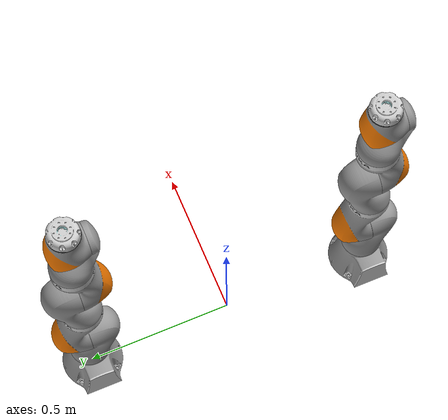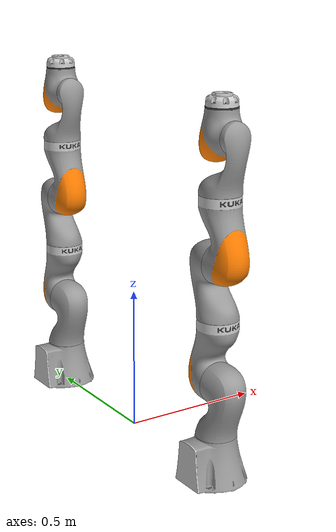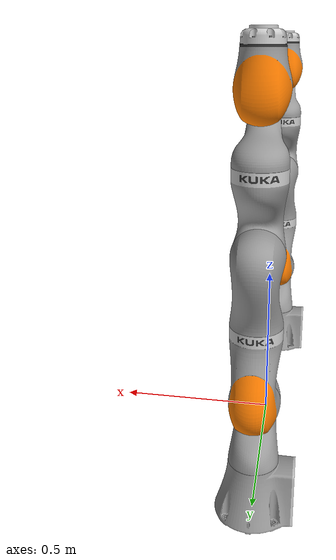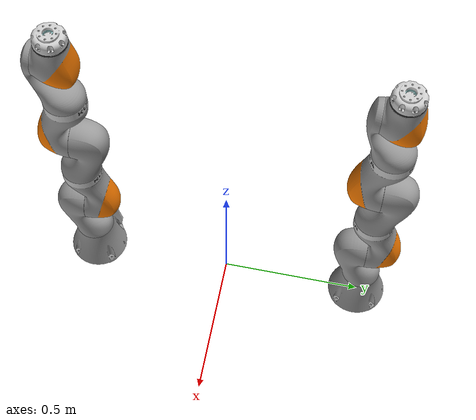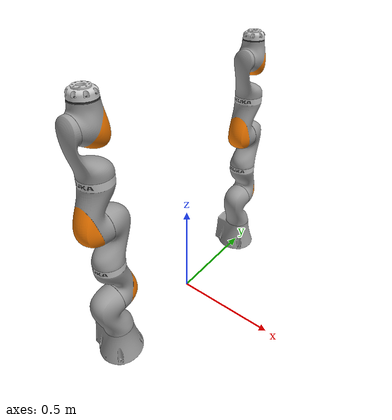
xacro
<?xml version="1.0"?>

<robot name="lbr_dual_arm" xmlns:xacro="http://www.ros.org/wiki/xacro">
    <!-- include the lbr iiwa macro -->
    <xacro:include filename="$(find lbr_description)/urdf/iiwa7/iiwa7_description.xacro" />

    <!-- add an arguent to allow for mock / hardware / gazebo -->
    <xacro:arg name="mode" default="mock" />

    <!-- add a base / floating link -->
    <link name="base_link" />

    <!-- add joints that connect the robots -->
    <joint name="lbr_one_base_joint" type="fixed">
        <origin xyz="0 0.5 0" rpy="0 0 0" />
        <parent link="base_link" />
        <child link="lbr_one_link_0" />
    </joint>

    <joint name="lbr_two_base_joint" type="fixed">
        <origin xyz="0 -0.5 0" rpy="0 0 0" />
        <parent link="base_link" />
        <child link="lbr_two_link_0" />
    </joint>

    <!-- add robot 1 via macro, note that different lbr_one_system_config.yaml are used (to
    configure port id) -->
    <xacro:iiwa7
        robot_name="lbr_one"
        mode="$(arg mode)"
        system_config_path="$(find lbr_dual_arm_description)/ros2_control/lbr_one_system_config.yaml" />

    <!-- add robot 2 via macro -->
    <xacro:iiwa7
        robot_name="lbr_two"
        mode="$(arg mode)"
        system_config_path="$(find lbr_dual_arm_description)/ros2_control/lbr_two_system_config.yaml" />
</robot>

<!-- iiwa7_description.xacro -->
<robot xmlns:xacro="http://www.ros.org/wiki/xacro">
    <!-- robot as extracted via https://github.com/syuntoku14/fusion2urdf -->
    <xacro:macro name="iiwa7"
        params="robot_name:=^|lbr mode:=^|mock system_config_path:=^|'$(find lbr_description)/ros2_control/lbr_system_config.yaml' joint_limits_path:=^|'$(find lbr_description)/urdf/iiwa7/joint_limits.yaml' initial_joint_positions_path:=^|'$(find lbr_description)/ros2_control/initial_joint_positions.yaml'">

        <!-- includes -->
        <xacro:include filename="$(find lbr_description)/gazebo/lbr_gazebo.xacro" />
        <xacro:include filename="$(find lbr_description)/ros2_control/lbr_system_interface.xacro" />

        <!-- joint limits via yaml -->
        <xacro:property name="joint_limits" value="${xacro.load_yaml(joint_limits_path)}" />

        <!-- constants -->
        <xacro:property name="PI" value="3.1415926535897931" />
        <xacro:property name="joint_damping" value="10.0" />
        <xacro:property name="joint_friction" value="0.1" />

        <!-- macros for gazebo / mock / hardware -->
        <xacro:lbr_gazebo robot_name="${robot_name}" />
        <xacro:lbr_system_interface
            robot_name="${robot_name}"
            mode="${mode}"
            joint_limits="${joint_limits}"
            system_config_path="${system_config_path}"
            initial_joint_positions_path="${initial_joint_positions_path}" />

        <link name="${robot_name}_link_0">
            <inertial>
                <origin rpy="0 0 0" xyz="-0.012857 0.0 0.069964" />
                <mass value="4.855658" />
                <inertia ixx="0.017839" ixy="0.0" ixz="0.000781" iyy="0.022294" iyz="0.0"
                    izz="0.021334" />
            </inertial>
            <visual>
                <origin rpy="0 0 0" xyz="0 0 0" />
                <geometry>
                    <mesh filename="package://lbr_description/meshes/iiwa7/visual/link_0.dae" />
                </geometry>
            </visual>
            <collision>
                <origin rpy="0 0 0" xyz="0 0 0" />
                <geometry>
                    <mesh filename="package://lbr_description/meshes/iiwa7/collision/link_0.stl" />
                </geometry>
            </collision>
        </link>

        <joint name="${robot_name}_A1" type="revolute">
            <origin rpy="0 0 0" xyz="0.0 0.0 0.1475" />
            <parent link="${robot_name}_link_0" />
            <child link="${robot_name}_link_1" />
            <axis xyz="0.0 0.0 1.0" />
            <limit
                effort="${joint_limits['A1']['effort']}"
                lower="${joint_limits['A1']['lower'] * PI / 180}"
                upper="${joint_limits['A1']['upper'] * PI / 180}"
                velocity="${joint_limits['A1']['velocity'] * PI / 180}" />
            <safety_controller
                soft_lower_limit="${joint_limits['A1']['lower'] * PI / 180}"
                soft_upper_limit="${joint_limits['A1']['upper'] * PI / 180}"
                k_position="${joint_limits['A1']['velocity'] / joint_limits['A1']['safety_position_margin']}"
                k_velocity="${joint_limits['A1']['k_velocity']}" />
            <dynamics damping="${joint_damping}" friction="${joint_friction}" />
        </joint>

        <link name="${robot_name}_link_1">
            <inertial>
                <origin rpy="0 0 0" xyz="0.0 -0.034819 0.123299" />
                <mass value="3.394011" />
                <inertia ixx="0.021383" ixy="0.0" ixz="0.0" iyy="0.020403" iyz="0.003797"
                    izz="0.007563" />
            </inertial>
            <visual>
                <origin rpy="0 0 0" xyz="0.0 0.0 -0.1475" />
                <geometry>
                    <mesh filename="package://lbr_description/meshes/iiwa7/visual/link_1.dae" />
                </geometry>
            </visual>
            <collision>
                <origin rpy="0 0 0" xyz="0.0 0.0 -0.1475" />
                <geometry>
                    <mesh filename="package://lbr_description/meshes/iiwa7/collision/link_1.stl" />
                </geometry>
            </collision>
        </link>

        <joint name="${robot_name}_A2" type="revolute">
            <origin rpy="0 0 0" xyz="0.0 -0.0105 0.1925" />
            <parent link="${robot_name}_link_1" />
            <child link="${robot_name}_link_2" />
            <axis xyz="0.0 1.0 0.0" />
            <limit
                effort="${joint_limits['A2']['effort']}"
                lower="${joint_limits['A2']['lower'] * PI / 180}"
                upper="${joint_limits['A2']['upper'] * PI / 180}"
                velocity="${joint_limits['A2']['velocity'] * PI / 180}" />
            <safety_controller
                soft_lower_limit="${joint_limits['A2']['lower'] * PI / 180}"
                soft_upper_limit="${joint_limits['A2']['upper'] * PI / 180}"
                k_position="${joint_limits['A2']['velocity'] / joint_limits['A2']['safety_position_margin']}"
                k_velocity="${joint_limits['A2']['k_velocity']}" />
            <dynamics damping="${joint_damping}" friction="${joint_friction}" />
        </joint>

        <link name="${robot_name}_link_2">
            <inertial>
                <origin rpy="0 0 0" xyz="0.0 0.039793 0.086944" />
                <mass value="4.031991" />
                <inertia ixx="0.031697" ixy="0.0" ixz="0.0" iyy="0.03008" iyz="0.005889"
                    izz="0.009666" />
            </inertial>
            <visual>
                <origin rpy="0 0 0" xyz="0.0 0.0105 -0.34" />
                <geometry>
                    <mesh filename="package://lbr_description/meshes/iiwa7/visual/link_2.dae" />
                </geometry>
            </visual>
            <collision>
                <origin rpy="0 0 0" xyz="0.0 0.0105 -0.34" />
                <geometry>
                    <mesh filename="package://lbr_description/meshes/iiwa7/collision/link_2.stl" />
                </geometry>
            </collision>
        </link>

        <joint name="${robot_name}_A3" type="revolute">
            <origin rpy="0 0 0" xyz="0.0 0.0105 0.2075" />
            <parent link="${robot_name}_link_2" />
            <child link="${robot_name}_link_3" />
            <axis xyz="0.0 0.0 1.0" />
            <limit
                effort="${joint_limits['A3']['effort']}"
                lower="${joint_limits['A3']['lower'] * PI / 180}"
                upper="${joint_limits['A3']['upper'] * PI / 180}"
                velocity="${joint_limits['A3']['velocity'] * PI / 180}" />
            <safety_controller
                soft_lower_limit="${joint_limits['A3']['lower'] * PI / 180}"
                soft_upper_limit="${joint_limits['A3']['upper'] * PI / 180}"
                k_position="${joint_limits['A3']['velocity'] / joint_limits['A3']['safety_position_margin']}"
                k_velocity="${joint_limits['A3']['k_velocity']}" />
            <dynamics damping="${joint_damping}" friction="${joint_friction}" />
        </joint>

        <link name="${robot_name}_link_3">
            <inertial>
                <origin rpy="0 0 0" xyz="0.0 0.034819 0.123299" />
                <mass value="3.394011" />
                <inertia ixx="0.021383" ixy="0.0" ixz="0.0" iyy="0.020403" iyz="-0.003797"
                    izz="0.007563" />
            </inertial>
            <visual>
                <origin rpy="0 0 0" xyz="0.0 0.0 -0.5475" />
                <geometry>
                    <mesh filename="package://lbr_description/meshes/iiwa7/visual/link_3.dae" />
                </geometry>
            </visual>
            <collision>
                <origin rpy="0 0 0" xyz="0.0 0.0 -0.5475" />
                <geometry>
                    <mesh filename="package://lbr_description/meshes/iiwa7/collision/link_3.stl" />
                </geometry>
            </collision>
        </link>

        <joint name="${robot_name}_A4" type="revolute">
            <origin rpy="0 0 0" xyz="0.0 0.0105 0.1925" />
            <parent link="${robot_name}_link_3" />
            <child link="${robot_name}_link_4" />
            <axis xyz="0.0 -1.0 0.0" />
            <limit
                effort="${joint_limits['A4']['effort']}"
                lower="${joint_limits['A4']['lower'] * PI / 180}"
                upper="${joint_limits['A4']['upper'] * PI / 180}"
                velocity="${joint_limits['A4']['velocity'] * PI / 180}" />
            <safety_controller
                soft_lower_limit="${joint_limits['A4']['lower'] * PI / 180}"
                soft_upper_limit="${joint_limits['A4']['upper'] * PI / 180}"
                k_position="${joint_limits['A4']['velocity'] / joint_limits['A4']['safety_position_margin']}"
                k_velocity="${joint_limits['A4']['k_velocity']}" />
            <dynamics damping="${joint_damping}" friction="${joint_friction}" />
        </joint>

        <link name="${robot_name}_link_4">
            <inertial>
                <origin rpy="0 0 0" xyz="0.0 -0.039793 0.086944" />
                <mass value="4.031989" />
                <inertia ixx="0.031695" ixy="0.0" ixz="0.0" iyy="0.030079" iyz="-0.005889"
                    izz="0.009665" />
            </inertial>
            <visual>
                <origin rpy="0 0 0" xyz="0.0 -0.0105 -0.74" />
                <geometry>
                    <mesh filename="package://lbr_description/meshes/iiwa7/visual/link_4.dae" />
                </geometry>
            </visual>
            <collision>
                <origin rpy="0 0 0" xyz="0.0 -0.0105 -0.74" />
                <geometry>
                    <mesh filename="package://lbr_description/meshes/iiwa7/collision/link_4.stl" />
                </geometry>
            </collision>
        </link>

        <joint name="${robot_name}_A5" type="revolute">
            <origin rpy="0 0 0" xyz="0.0 -0.0105 0.2075" />
            <parent link="${robot_name}_link_4" />
            <child link="${robot_name}_link_5" />
            <axis xyz="0.0 0.0 1.0" />
            <limit
                effort="${joint_limits['A5']['effort']}"
                lower="${joint_limits['A5']['lower'] * PI / 180}"
                upper="${joint_limits['A5']['upper'] * PI / 180}"
                velocity="${joint_limits['A5']['velocity'] * PI / 180}" />
            <safety_controller
                soft_lower_limit="${joint_limits['A5']['lower'] * PI / 180}"
                soft_upper_limit="${joint_limits['A5']['upper'] * PI / 180}"
                k_position="${joint_limits['A5']['velocity'] / joint_limits['A5']['safety_position_margin']}"
                k_velocity="${joint_limits['A5']['k_velocity']}" />
            <dynamics damping="${joint_damping}" friction="${joint_friction}" />
        </joint>

        <link name="${robot_name}_link_5">
            <inertial>
                <origin rpy="0 0 0" xyz="0.0 -0.029824 0.076267" />
                <mass value="1.529239" />
                <inertia ixx="0.008485" ixy="0.0" ixz="0.0" iyy="0.007136" iyz="0.002806"
                    izz="0.003848" />
            </inertial>
            <visual>
                <origin rpy="0 0 0" xyz="0.0 0.0 -0.9475" />
                <geometry>
                    <mesh filename="package://lbr_description/meshes/iiwa7/visual/link_5.dae" />
                </geometry>
            </visual>
            <collision>
                <origin rpy="0 0 0" xyz="0.0 0.0 -0.9475" />
                <geometry>
                    <mesh filename="package://lbr_description/meshes/iiwa7/collision/link_5.stl" />
                </geometry>
            </collision>
        </link>

        <joint name="${robot_name}_A6" type="revolute">
            <origin rpy="0 0 0" xyz="0.0 -0.0707 0.1925" />
            <parent link="${robot_name}_link_5" />
            <child link="${robot_name}_link_6" />
            <axis xyz="0.0 1.0 0.0" />
            <limit
                effort="${joint_limits['A6']['effort']}"
                lower="${joint_limits['A6']['lower'] * PI / 180}"
                upper="${joint_limits['A6']['upper'] * PI / 180}"
                velocity="${joint_limits['A6']['velocity'] * PI / 180}" />
            <safety_controller
                soft_lower_limit="${joint_limits['A6']['lower'] * PI / 180}"
                soft_upper_limit="${joint_limits['A6']['upper'] * PI / 180}"
                k_position="${joint_limits['A6']['velocity'] / joint_limits['A6']['safety_position_margin']}"
                k_velocity="${joint_limits['A6']['k_velocity']}" />
            <dynamics damping="${joint_damping}" friction="${joint_friction}" />
        </joint>

        <link name="${robot_name}_link_6">
            <inertial>
                <origin rpy="0 0 0" xyz="0.0 0.07102 0.00495" />
                <mass value="2.403626" />
                <inertia ixx="0.007067" ixy="0.0" ixz="0.0" iyy="0.006804" iyz="0.000311"
                    izz="0.004629" />
            </inertial>
            <visual>
                <origin rpy="0 0 0" xyz="0.0 0.0707 -1.14" />
                <geometry>
                    <mesh filename="package://lbr_description/meshes/iiwa7/visual/link_6.dae" />
                </geometry>
            </visual>
            <collision>
                <origin rpy="0 0 0" xyz="0.0 0.0707 -1.14" />
                <geometry>
                    <mesh filename="package://lbr_description/meshes/iiwa7/collision/link_6.stl" />
                </geometry>
            </collision>
        </link>

        <joint name="${robot_name}_A7" type="revolute">
            <origin rpy="0 0 0" xyz="0.0 0.0707 0.091" />
            <parent link="${robot_name}_link_6" />
            <child link="${robot_name}_link_7" />
            <axis xyz="0.0 0.0 1.0" />
            <limit
                effort="${joint_limits['A7']['effort']}"
                lower="${joint_limits['A7']['lower'] * PI / 180}"
                upper="${joint_limits['A7']['upper'] * PI / 180}"
                velocity="${joint_limits['A7']['velocity'] * PI / 180}" />
            <safety_controller
                soft_lower_limit="${joint_limits['A7']['lower'] * PI / 180}"
                soft_upper_limit="${joint_limits['A7']['upper'] * PI / 180}"
                k_position="${joint_limits['A7']['velocity'] / joint_limits['A7']['safety_position_margin']}"
                k_velocity="${joint_limits['A7']['k_velocity']}" />
            <dynamics damping="${joint_damping}" friction="${joint_friction}" />
        </joint>

        <link name="${robot_name}_link_7">
            <inertial>
                <origin rpy="0 0 0" xyz="3.0000e-06 -2.0000e-06 1.3782e-02" />
                <mass value="0.259474" />
                <inertia ixx="0.000171" ixy="0.0" ixz="0.0" iyy="0.000171" iyz="0.0" izz="0.000299" />
            </inertial>
            <visual>
                <origin rpy="0 0 0" xyz="0.0 0.0 -1.231" />
                <geometry>
                    <mesh filename="package://lbr_description/meshes/iiwa7/visual/link_7.dae" />
                </geometry>
            </visual>
            <collision>
                <origin rpy="0 0 0" xyz="0.0 0.0 -1.231" />
                <geometry>
                    <mesh filename="package://lbr_description/meshes/iiwa7/collision/link_7.stl" />
                </geometry>
            </collision>
        </link>

        <joint name="${robot_name}_joint_ee" type="fixed">
            <parent link="${robot_name}_link_7" />
            <child link="${robot_name}_link_ee" />
            <origin xyz="0 0 0.035" rpy="0 0 0" />
        </joint>

        <link name="${robot_name}_link_ee">
        </link>
    </xacro:macro>
</robot>
